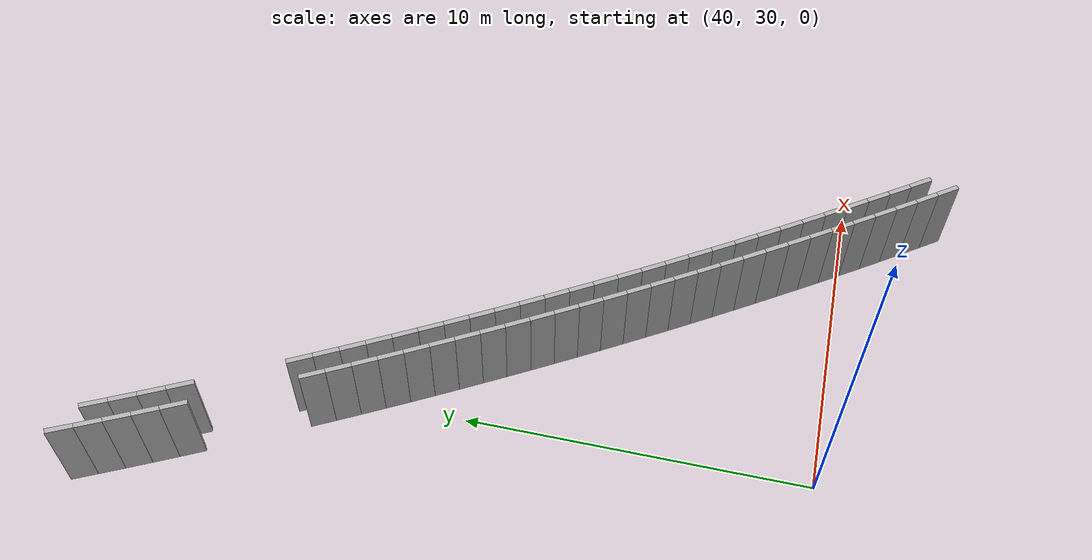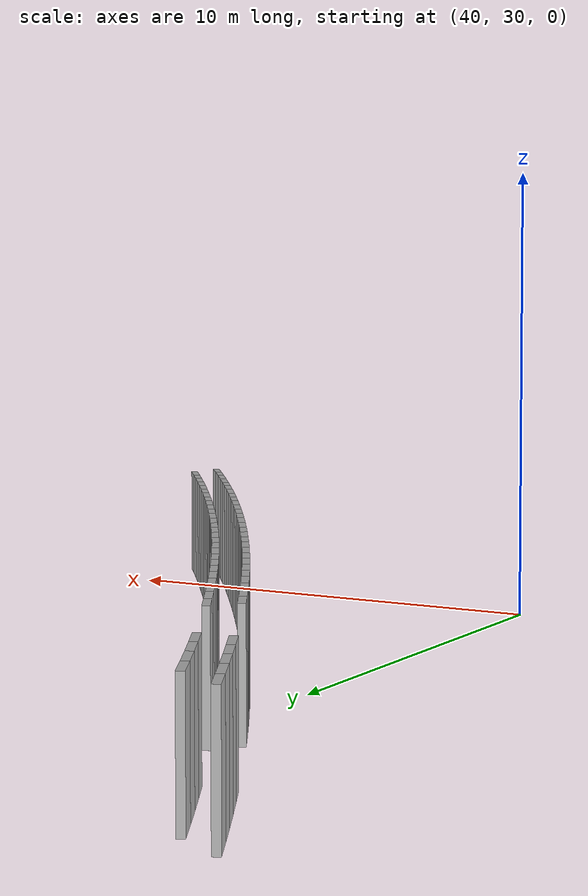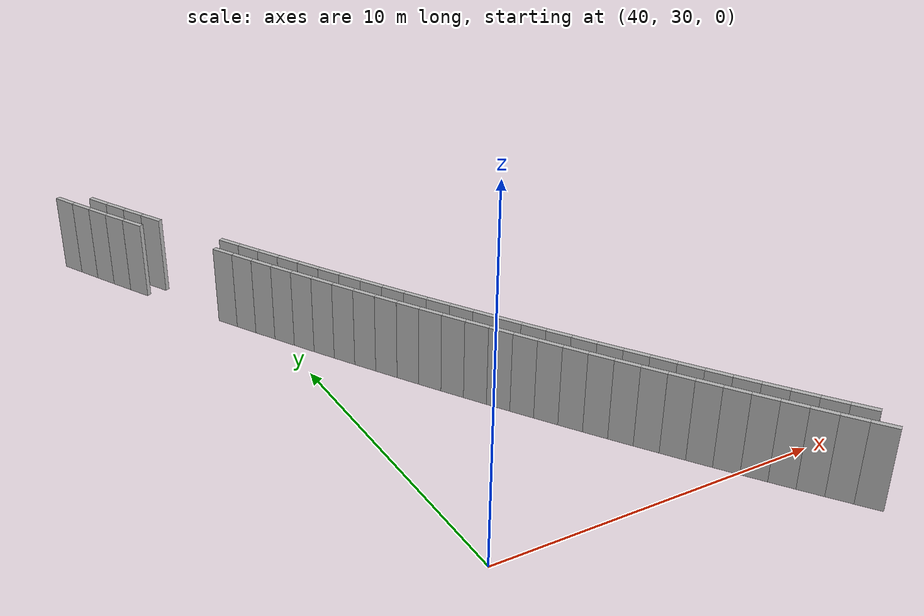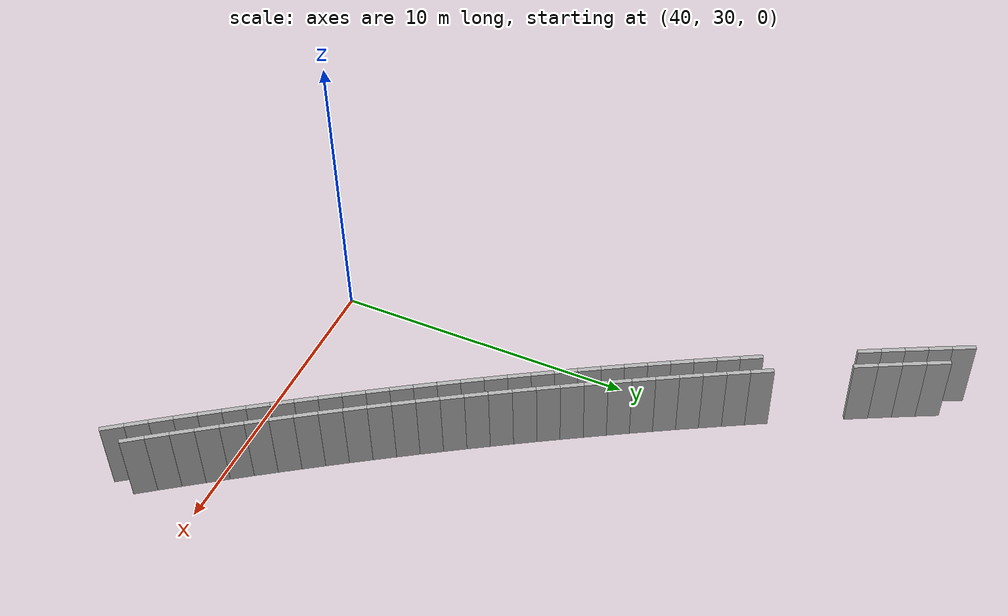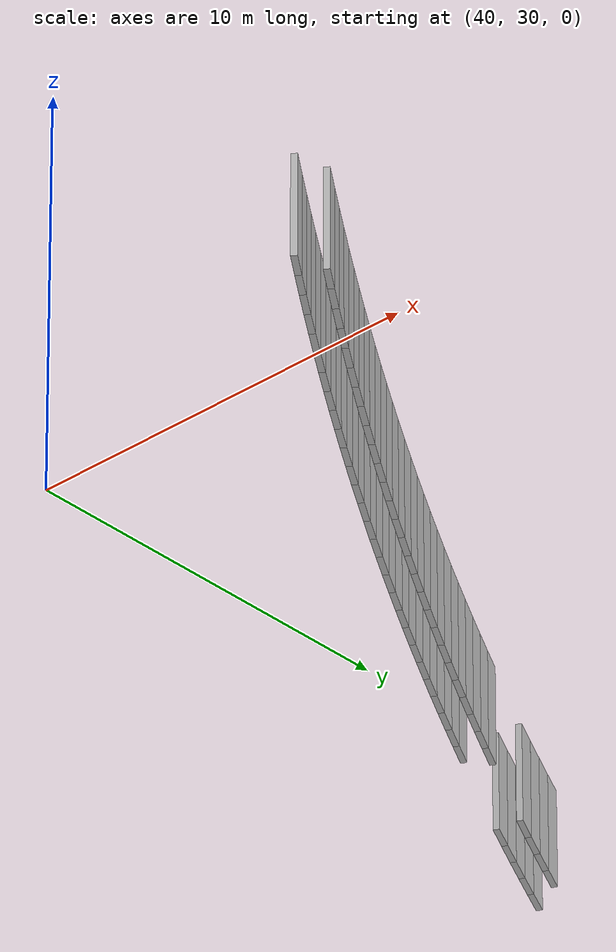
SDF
<?xml version="1.0" ?>
<sdf version="1.6">
  <model name="sps_0101">
    <pose frame="">0 0 0 0 -0 0</pose>
    <static>1</static>
    <self_collide>0</self_collide>
    <allow_auto_disable>0</allow_auto_disable>
    <link name="Wall8931">
      <kinematic>0</kinematic>
      <gravity>1</gravity>
      <self_collide>0</self_collide>
      <collision name="collision">
        <geometry>
          <box>
            <size>0.771651 0.15 2.5</size>
          </box>
        </geometry>
        <pose frame="">0 0 0 0 -0 0</pose>
      </collision>
      <visual name="visual">
        <geometry>
          <box>
            <size>0.771651 0.15 2.5</size>
          </box>
        </geometry>
        <pose frame="">0 0 0 0 -0 0</pose>
        <cast_shadows>1</cast_shadows>
        <transparency>0.0</transparency>
      </visual>
      <pose frame="">36.9091 49.4346 1.25 0 0 -1.10609</pose>
    </link>
    <link name="Wall8932">
      <kinematic>0</kinematic>
      <gravity>1</gravity>
      <self_collide>0</self_collide>
      <collision name="collision">
        <geometry>
          <box>
            <size>0.771365 0.15 2.5</size>
          </box>
        </geometry>
        <pose frame="">0 0 0 0 -0 0</pose>
      </collision>
      <visual name="visual">
        <geometry>
          <box>
            <size>0.771365 0.15 2.5</size>
          </box>
        </geometry>
        <pose frame="">0 0 0 0 -0 0</pose>
        <cast_shadows>1</cast_shadows>
        <transparency>0.0</transparency>
      </visual>
      <pose frame="">37.2566 48.7458 1.25 0 0 -1.10103</pose>
    </link>
    <link name="Wall8933">
      <kinematic>0</kinematic>
      <gravity>1</gravity>
      <self_collide>0</self_collide>
      <collision name="collision">
        <geometry>
          <box>
            <size>0.771452 0.15 2.5</size>
          </box>
        </geometry>
        <pose frame="">0 0 0 0 -0 0</pose>
      </collision>
      <visual name="visual">
        <geometry>
          <box>
            <size>0.771452 0.15 2.5</size>
          </box>
        </geometry>
        <pose frame="">0 0 0 0 -0 0</pose>
        <cast_shadows>1</cast_shadows>
        <transparency>0.0</transparency>
      </visual>
      <pose frame="">37.6075 48.0588 1.25 0 0 -1.09611</pose>
    </link>
    <link name="Wall8934">
      <kinematic>0</kinematic>
      <gravity>1</gravity>
      <self_collide>0</self_collide>
      <collision name="collision">
        <geometry>
          <box>
            <size>0.771666 0.15 2.5</size>
          </box>
        </geometry>
        <pose frame="">0 0 0 0 -0 0</pose>
      </collision>
      <visual name="visual">
        <geometry>
          <box>
            <size>0.771666 0.15 2.5</size>
          </box>
        </geometry>
        <pose frame="">0 0 0 0 -0 0</pose>
        <cast_shadows>1</cast_shadows>
        <transparency>0.0</transparency>
      </visual>
      <pose frame="">37.9618 47.3734 1.25 0 0 -1.09127</pose>
    </link>
    <link name="Wall18893">
      <kinematic>0</kinematic>
      <gravity>1</gravity>
      <self_collide>0</self_collide>
      <collision name="collision">
        <geometry>
          <box>
            <size>0.74526 0.15 2.5</size>
          </box>
        </geometry>
        <pose frame="">0 0 0 0 -0 0</pose>
      </collision>
      <visual name="visual">
        <geometry>
          <box>
            <size>0.74526 0.15 2.5</size>
          </box>
        </geometry>
        <pose frame="">0 0 0 0 -0 0</pose>
        <cast_shadows>1</cast_shadows>
        <transparency>0.0</transparency>
      </visual>
      <pose frame="">39.4961 44.4989 1.25 0 0 -1.0707</pose>
    </link>
    <link name="Wall18894">
      <kinematic>0</kinematic>
      <gravity>1</gravity>
      <self_collide>0</self_collide>
      <collision name="collision">
        <geometry>
          <box>
            <size>0.745296 0.15 2.5</size>
          </box>
        </geometry>
        <pose frame="">0 0 0 0 -0 0</pose>
      </collision>
      <visual name="visual">
        <geometry>
          <box>
            <size>0.745296 0.15 2.5</size>
          </box>
        </geometry>
        <pose frame="">0 0 0 0 -0 0</pose>
        <cast_shadows>1</cast_shadows>
        <transparency>0.0</transparency>
      </visual>
      <pose frame="">39.8552 43.8458 1.25 0 0 -1.06568</pose>
    </link>
    <link name="Wall18895">
      <kinematic>0</kinematic>
      <gravity>1</gravity>
      <self_collide>0</self_collide>
      <collision name="collision">
        <geometry>
          <box>
            <size>0.745528 0.15 2.5</size>
          </box>
        </geometry>
        <pose frame="">0 0 0 0 -0 0</pose>
      </collision>
      <visual name="visual">
        <geometry>
          <box>
            <size>0.745528 0.15 2.5</size>
          </box>
        </geometry>
        <pose frame="">0 0 0 0 -0 0</pose>
        <cast_shadows>1</cast_shadows>
        <transparency>0.0</transparency>
      </visual>
      <pose frame="">40.2174 43.1943 1.25 0 0 -1.06107</pose>
    </link>
    <link name="Wall18896">
      <kinematic>0</kinematic>
      <gravity>1</gravity>
      <self_collide>0</self_collide>
      <collision name="collision">
        <geometry>
          <box>
            <size>0.745201 0.15 2.5</size>
          </box>
        </geometry>
        <pose frame="">0 0 0 0 -0 0</pose>
      </collision>
      <visual name="visual">
        <geometry>
          <box>
            <size>0.745201 0.15 2.5</size>
          </box>
        </geometry>
        <pose frame="">0 0 0 0 -0 0</pose>
        <cast_shadows>1</cast_shadows>
        <transparency>0.0</transparency>
      </visual>
      <pose frame="">40.5825 42.5445 1.25 0 0 -1.05651</pose>
    </link>
    <link name="Wall18897">
      <kinematic>0</kinematic>
      <gravity>1</gravity>
      <self_collide>0</self_collide>
      <collision name="collision">
        <geometry>
          <box>
            <size>0.74542 0.15 2.5</size>
          </box>
        </geometry>
        <pose frame="">0 0 0 0 -0 0</pose>
      </collision>
      <visual name="visual">
        <geometry>
          <box>
            <size>0.74542 0.15 2.5</size>
          </box>
        </geometry>
        <pose frame="">0 0 0 0 -0 0</pose>
        <cast_shadows>1</cast_shadows>
        <transparency>0.0</transparency>
      </visual>
      <pose frame="">40.9507 41.8965 1.25 0 0 -1.05168</pose>
    </link>
    <link name="Wall18898">
      <kinematic>0</kinematic>
      <gravity>1</gravity>
      <self_collide>0</self_collide>
      <collision name="collision">
        <geometry>
          <box>
            <size>0.745413 0.15 2.5</size>
          </box>
        </geometry>
        <pose frame="">0 0 0 0 -0 0</pose>
      </collision>
      <visual name="visual">
        <geometry>
          <box>
            <size>0.745413 0.15 2.5</size>
          </box>
        </geometry>
        <pose frame="">0 0 0 0 -0 0</pose>
        <cast_shadows>1</cast_shadows>
        <transparency>0.0</transparency>
      </visual>
      <pose frame="">41.3221 41.2502 1.25 0 0 -1.04677</pose>
    </link>
    <link name="Wall18899">
      <kinematic>0</kinematic>
      <gravity>1</gravity>
      <self_collide>0</self_collide>
      <collision name="collision">
        <geometry>
          <box>
            <size>0.745324 0.15 2.5</size>
          </box>
        </geometry>
        <pose frame="">0 0 0 0 -0 0</pose>
      </collision>
      <visual name="visual">
        <geometry>
          <box>
            <size>0.745324 0.15 2.5</size>
          </box>
        </geometry>
        <pose frame="">0 0 0 0 -0 0</pose>
        <cast_shadows>1</cast_shadows>
        <transparency>0.0</transparency>
      </visual>
      <pose frame="">41.6966 40.6057 1.25 0 0 -1.04224</pose>
    </link>
    <link name="Wall18900">
      <kinematic>0</kinematic>
      <gravity>1</gravity>
      <self_collide>0</self_collide>
      <collision name="collision">
        <geometry>
          <box>
            <size>0.745321 0.15 2.5</size>
          </box>
        </geometry>
        <pose frame="">0 0 0 0 -0 0</pose>
      </collision>
      <visual name="visual">
        <geometry>
          <box>
            <size>0.745321 0.15 2.5</size>
          </box>
        </geometry>
        <pose frame="">0 0 0 0 -0 0</pose>
        <cast_shadows>1</cast_shadows>
        <transparency>0.0</transparency>
      </visual>
      <pose frame="">42.074 39.963 1.25 0 0 -1.0374</pose>
    </link>
    <link name="Wall18901">
      <kinematic>0</kinematic>
      <gravity>1</gravity>
      <self_collide>0</self_collide>
      <collision name="collision">
        <geometry>
          <box>
            <size>0.745357 0.15 2.5</size>
          </box>
        </geometry>
        <pose frame="">0 0 0 0 -0 0</pose>
      </collision>
      <visual name="visual">
        <geometry>
          <box>
            <size>0.745357 0.15 2.5</size>
          </box>
        </geometry>
        <pose frame="">0 0 0 0 -0 0</pose>
        <cast_shadows>1</cast_shadows>
        <transparency>0.0</transparency>
      </visual>
      <pose frame="">42.4545 39.3221 1.25 0 0 -1.03267</pose>
    </link>
    <link name="Wall18902">
      <kinematic>0</kinematic>
      <gravity>1</gravity>
      <self_collide>0</self_collide>
      <collision name="collision">
        <geometry>
          <box>
            <size>0.745326 0.15 2.5</size>
          </box>
        </geometry>
        <pose frame="">0 0 0 0 -0 0</pose>
      </collision>
      <visual name="visual">
        <geometry>
          <box>
            <size>0.745326 0.15 2.5</size>
          </box>
        </geometry>
        <pose frame="">0 0 0 0 -0 0</pose>
        <cast_shadows>1</cast_shadows>
        <transparency>0.0</transparency>
      </visual>
      <pose frame="">42.838 38.683 1.25 0 0 -1.02796</pose>
    </link>
    <link name="Wall18903">
      <kinematic>0</kinematic>
      <gravity>1</gravity>
      <self_collide>0</self_collide>
      <collision name="collision">
        <geometry>
          <box>
            <size>0.745459 0.15 2.5</size>
          </box>
        </geometry>
        <pose frame="">0 0 0 0 -0 0</pose>
      </collision>
      <visual name="visual">
        <geometry>
          <box>
            <size>0.745459 0.15 2.5</size>
          </box>
        </geometry>
        <pose frame="">0 0 0 0 -0 0</pose>
        <cast_shadows>1</cast_shadows>
        <transparency>0.0</transparency>
      </visual>
      <pose frame="">43.2246 38.0457 1.25 0 0 -1.02309</pose>
    </link>
    <link name="Wall18904">
      <kinematic>0</kinematic>
      <gravity>1</gravity>
      <self_collide>0</self_collide>
      <collision name="collision">
        <geometry>
          <box>
            <size>0.745209 0.15 2.5</size>
          </box>
        </geometry>
        <pose frame="">0 0 0 0 -0 0</pose>
      </collision>
      <visual name="visual">
        <geometry>
          <box>
            <size>0.745209 0.15 2.5</size>
          </box>
        </geometry>
        <pose frame="">0 0 0 0 -0 0</pose>
        <cast_shadows>1</cast_shadows>
        <transparency>0.0</transparency>
      </visual>
      <pose frame="">43.6142 37.4103 1.25 0 0 -1.01847</pose>
    </link>
    <link name="Wall18905">
      <kinematic>0</kinematic>
      <gravity>1</gravity>
      <self_collide>0</self_collide>
      <collision name="collision">
        <geometry>
          <box>
            <size>0.745435 0.15 2.5</size>
          </box>
        </geometry>
        <pose frame="">0 0 0 0 -0 0</pose>
      </collision>
      <visual name="visual">
        <geometry>
          <box>
            <size>0.745435 0.15 2.5</size>
          </box>
        </geometry>
        <pose frame="">0 0 0 0 -0 0</pose>
        <cast_shadows>1</cast_shadows>
        <transparency>0.0</transparency>
      </visual>
      <pose frame="">44.0066 36.7767 1.25 0 0 -1.01393</pose>
    </link>
    <link name="Wall18906">
      <kinematic>0</kinematic>
      <gravity>1</gravity>
      <self_collide>0</self_collide>
      <collision name="collision">
        <geometry>
          <box>
            <size>0.745347 0.15 2.5</size>
          </box>
        </geometry>
        <pose frame="">0 0 0 0 -0 0</pose>
      </collision>
      <visual name="visual">
        <geometry>
          <box>
            <size>0.745347 0.15 2.5</size>
          </box>
        </geometry>
        <pose frame="">0 0 0 0 -0 0</pose>
        <cast_shadows>1</cast_shadows>
        <transparency>0.0</transparency>
      </visual>
      <pose frame="">44.4022 36.1449 1.25 0 0 -1.00903</pose>
    </link>
    <link name="Wall18907">
      <kinematic>0</kinematic>
      <gravity>1</gravity>
      <self_collide>0</self_collide>
      <collision name="collision">
        <geometry>
          <box>
            <size>0.745212 0.15 2.5</size>
          </box>
        </geometry>
        <pose frame="">0 0 0 0 -0 0</pose>
      </collision>
      <visual name="visual">
        <geometry>
          <box>
            <size>0.745212 0.15 2.5</size>
          </box>
        </geometry>
        <pose frame="">0 0 0 0 -0 0</pose>
        <cast_shadows>1</cast_shadows>
        <transparency>0.0</transparency>
      </visual>
      <pose frame="">44.8007 35.5151 1.25 0 0 -1.00426</pose>
    </link>
    <link name="Wall18908">
      <kinematic>0</kinematic>
      <gravity>1</gravity>
      <self_collide>0</self_collide>
      <collision name="collision">
        <geometry>
          <box>
            <size>0.745364 0.15 2.5</size>
          </box>
        </geometry>
        <pose frame="">0 0 0 0 -0 0</pose>
      </collision>
      <visual name="visual">
        <geometry>
          <box>
            <size>0.745364 0.15 2.5</size>
          </box>
        </geometry>
        <pose frame="">0 0 0 0 -0 0</pose>
        <cast_shadows>1</cast_shadows>
        <transparency>0.0</transparency>
      </visual>
      <pose frame="">45.2021 34.8872 1.25 0 0 -0.999533</pose>
    </link>
    <link name="Wall18909">
      <kinematic>0</kinematic>
      <gravity>1</gravity>
      <self_collide>0</self_collide>
      <collision name="collision">
        <geometry>
          <box>
            <size>0.745449 0.15 2.5</size>
          </box>
        </geometry>
        <pose frame="">0 0 0 0 -0 0</pose>
      </collision>
      <visual name="visual">
        <geometry>
          <box>
            <size>0.745449 0.15 2.5</size>
          </box>
        </geometry>
        <pose frame="">0 0 0 0 -0 0</pose>
        <cast_shadows>1</cast_shadows>
        <transparency>0.0</transparency>
      </visual>
      <pose frame="">45.6067 34.2611 1.25 0 0 -0.99483</pose>
    </link>
    <link name="Wall18910">
      <kinematic>0</kinematic>
      <gravity>1</gravity>
      <self_collide>0</self_collide>
      <collision name="collision">
        <geometry>
          <box>
            <size>0.745449 0.15 2.5</size>
          </box>
        </geometry>
        <pose frame="">0 0 0 0 -0 0</pose>
      </collision>
      <visual name="visual">
        <geometry>
          <box>
            <size>0.745449 0.15 2.5</size>
          </box>
        </geometry>
        <pose frame="">0 0 0 0 -0 0</pose>
        <cast_shadows>1</cast_shadows>
        <transparency>0.0</transparency>
      </visual>
      <pose frame="">46.0142 33.6369 1.25 0 0 -0.990038</pose>
    </link>
    <link name="Wall18911">
      <kinematic>0</kinematic>
      <gravity>1</gravity>
      <self_collide>0</self_collide>
      <collision name="collision">
        <geometry>
          <box>
            <size>0.745262 0.15 2.5</size>
          </box>
        </geometry>
        <pose frame="">0 0 0 0 -0 0</pose>
      </collision>
      <visual name="visual">
        <geometry>
          <box>
            <size>0.745262 0.15 2.5</size>
          </box>
        </geometry>
        <pose frame="">0 0 0 0 -0 0</pose>
        <cast_shadows>1</cast_shadows>
        <transparency>0.0</transparency>
      </visual>
      <pose frame="">46.4246 33.0147 1.25 0 0 -0.98536</pose>
    </link>
    <link name="Wall18912">
      <kinematic>0</kinematic>
      <gravity>1</gravity>
      <self_collide>0</self_collide>
      <collision name="collision">
        <geometry>
          <box>
            <size>0.745296 0.15 2.5</size>
          </box>
        </geometry>
        <pose frame="">0 0 0 0 -0 0</pose>
      </collision>
      <visual name="visual">
        <geometry>
          <box>
            <size>0.745296 0.15 2.5</size>
          </box>
        </geometry>
        <pose frame="">0 0 0 0 -0 0</pose>
        <cast_shadows>1</cast_shadows>
        <transparency>0.0</transparency>
      </visual>
      <pose frame="">46.8379 32.3945 1.25 0 0 -0.980568</pose>
    </link>
    <link name="Wall18913">
      <kinematic>0</kinematic>
      <gravity>1</gravity>
      <self_collide>0</self_collide>
      <collision name="collision">
        <geometry>
          <box>
            <size>0.745346 0.15 2.5</size>
          </box>
        </geometry>
        <pose frame="">0 0 0 0 -0 0</pose>
      </collision>
      <visual name="visual">
        <geometry>
          <box>
            <size>0.745346 0.15 2.5</size>
          </box>
        </geometry>
        <pose frame="">0 0 0 0 -0 0</pose>
        <cast_shadows>1</cast_shadows>
        <transparency>0.0</transparency>
      </visual>
      <pose frame="">47.2541 31.7763 1.25 0 0 -0.975776</pose>
    </link>
    <link name="Wall18914">
      <kinematic>0</kinematic>
      <gravity>1</gravity>
      <self_collide>0</self_collide>
      <collision name="collision">
        <geometry>
          <box>
            <size>0.74536 0.15 2.5</size>
          </box>
        </geometry>
        <pose frame="">0 0 0 0 -0 0</pose>
      </collision>
      <visual name="visual">
        <geometry>
          <box>
            <size>0.74536 0.15 2.5</size>
          </box>
        </geometry>
        <pose frame="">0 0 0 0 -0 0</pose>
        <cast_shadows>1</cast_shadows>
        <transparency>0.0</transparency>
      </visual>
      <pose frame="">47.6733 31.16 1.25 0 0 -0.971233</pose>
    </link>
    <link name="Wall18915">
      <kinematic>0</kinematic>
      <gravity>1</gravity>
      <self_collide>0</self_collide>
      <collision name="collision">
        <geometry>
          <box>
            <size>0.745479 0.15 2.5</size>
          </box>
        </geometry>
        <pose frame="">0 0 0 0 -0 0</pose>
      </collision>
      <visual name="visual">
        <geometry>
          <box>
            <size>0.745479 0.15 2.5</size>
          </box>
        </geometry>
        <pose frame="">0 0 0 0 -0 0</pose>
        <cast_shadows>1</cast_shadows>
        <transparency>0.0</transparency>
      </visual>
      <pose frame="">48.0955 30.5456 1.25 0 0 -0.966375</pose>
    </link>
    <link name="Wall18916">
      <kinematic>0</kinematic>
      <gravity>1</gravity>
      <self_collide>0</self_collide>
      <collision name="collision">
        <geometry>
          <box>
            <size>0.74524 0.15 2.5</size>
          </box>
        </geometry>
        <pose frame="">0 0 0 0 -0 0</pose>
      </collision>
      <visual name="visual">
        <geometry>
          <box>
            <size>0.74524 0.15 2.5</size>
          </box>
        </geometry>
        <pose frame="">0 0 0 0 -0 0</pose>
        <cast_shadows>1</cast_shadows>
        <transparency>0.0</transparency>
      </visual>
      <pose frame="">48.5205 29.9333 1.25 0 0 -0.961667</pose>
    </link>
    <link name="Wall18917">
      <kinematic>0</kinematic>
      <gravity>1</gravity>
      <self_collide>0</self_collide>
      <collision name="collision">
        <geometry>
          <box>
            <size>0.745508 0.15 2.5</size>
          </box>
        </geometry>
        <pose frame="">0 0 0 0 -0 0</pose>
      </collision>
      <visual name="visual">
        <geometry>
          <box>
            <size>0.745508 0.15 2.5</size>
          </box>
        </geometry>
        <pose frame="">0 0 0 0 -0 0</pose>
        <cast_shadows>1</cast_shadows>
        <transparency>0.0</transparency>
      </visual>
      <pose frame="">48.9484 29.323 1.25 0 0 -0.957019</pose>
    </link>
    <link name="Wall18918">
      <kinematic>0</kinematic>
      <gravity>1</gravity>
      <self_collide>0</self_collide>
      <collision name="collision">
        <geometry>
          <box>
            <size>0.745287 0.15 2.5</size>
          </box>
        </geometry>
        <pose frame="">0 0 0 0 -0 0</pose>
      </collision>
      <visual name="visual">
        <geometry>
          <box>
            <size>0.745287 0.15 2.5</size>
          </box>
        </geometry>
        <pose frame="">0 0 0 0 -0 0</pose>
        <cast_shadows>1</cast_shadows>
        <transparency>0.0</transparency>
      </visual>
      <pose frame="">49.3791 28.7147 1.25 0 0 -0.952194</pose>
    </link>
    <link name="Wall18919">
      <kinematic>0</kinematic>
      <gravity>1</gravity>
      <self_collide>0</self_collide>
      <collision name="collision">
        <geometry>
          <box>
            <size>0.745282 0.15 2.5</size>
          </box>
        </geometry>
        <pose frame="">0 0 0 0 -0 0</pose>
      </collision>
      <visual name="visual">
        <geometry>
          <box>
            <size>0.745282 0.15 2.5</size>
          </box>
        </geometry>
        <pose frame="">0 0 0 0 -0 0</pose>
        <cast_shadows>1</cast_shadows>
        <transparency>0.0</transparency>
      </visual>
      <pose frame="">49.8127 28.1085 1.25 0 0 -0.947558</pose>
    </link>
    <link name="Wall20884">
      <kinematic>0</kinematic>
      <gravity>1</gravity>
      <self_collide>0</self_collide>
      <collision name="collision">
        <geometry>
          <box>
            <size>0.753398 0.15 2.5</size>
          </box>
        </geometry>
        <pose frame="">0 0 0 0 -0 0</pose>
      </collision>
      <visual name="visual">
        <geometry>
          <box>
            <size>0.753398 0.15 2.5</size>
          </box>
        </geometry>
        <pose frame="">0 0 0 0 -0 0</pose>
        <cast_shadows>1</cast_shadows>
        <transparency>0.0</transparency>
      </visual>
      <pose frame="">35.96 49.9944 1.25 0 0 -1.11179</pose>
    </link>
    <link name="Wall20885">
      <kinematic>0</kinematic>
      <gravity>1</gravity>
      <self_collide>0</self_collide>
      <collision name="collision">
        <geometry>
          <box>
            <size>0.753554 0.15 2.5</size>
          </box>
        </geometry>
        <pose frame="">0 0 0 0 -0 0</pose>
      </collision>
      <visual name="visual">
        <geometry>
          <box>
            <size>0.753554 0.15 2.5</size>
          </box>
        </geometry>
        <pose frame="">0 0 0 0 -0 0</pose>
        <cast_shadows>1</cast_shadows>
        <transparency>0.0</transparency>
      </visual>
      <pose frame="">36.2953 49.3197 1.25 0 0 -1.10718</pose>
    </link>
    <link name="Wall20886">
      <kinematic>0</kinematic>
      <gravity>1</gravity>
      <self_collide>0</self_collide>
      <collision name="collision">
        <geometry>
          <box>
            <size>0.753482 0.15 2.5</size>
          </box>
        </geometry>
        <pose frame="">0 0 0 0 -0 0</pose>
      </collision>
      <visual name="visual">
        <geometry>
          <box>
            <size>0.753482 0.15 2.5</size>
          </box>
        </geometry>
        <pose frame="">0 0 0 0 -0 0</pose>
        <cast_shadows>1</cast_shadows>
        <transparency>0.0</transparency>
      </visual>
      <pose frame="">36.6341 48.6466 1.25 0 0 -1.10197</pose>
    </link>
    <link name="Wall20887">
      <kinematic>0</kinematic>
      <gravity>1</gravity>
      <self_collide>0</self_collide>
      <collision name="collision">
        <geometry>
          <box>
            <size>0.753615 0.15 2.5</size>
          </box>
        </geometry>
        <pose frame="">0 0 0 0 -0 0</pose>
      </collision>
      <visual name="visual">
        <geometry>
          <box>
            <size>0.753615 0.15 2.5</size>
          </box>
        </geometry>
        <pose frame="">0 0 0 0 -0 0</pose>
        <cast_shadows>1</cast_shadows>
        <transparency>0.0</transparency>
      </visual>
      <pose frame="">36.976 47.9751 1.25 0 0 -1.0977</pose>
    </link>
    <link name="Wall20888">
      <kinematic>0</kinematic>
      <gravity>1</gravity>
      <self_collide>0</self_collide>
      <collision name="collision">
        <geometry>
          <box>
            <size>0.753414 0.15 2.5</size>
          </box>
        </geometry>
        <pose frame="">0 0 0 0 -0 0</pose>
      </collision>
      <visual name="visual">
        <geometry>
          <box>
            <size>0.753414 0.15 2.5</size>
          </box>
        </geometry>
        <pose frame="">0 0 0 0 -0 0</pose>
        <cast_shadows>1</cast_shadows>
        <transparency>0.0</transparency>
      </visual>
      <pose frame="">37.321 47.3052 1.25 0 0 -1.09273</pose>
    </link>
    <link name="Wall20892">
      <kinematic>0</kinematic>
      <gravity>1</gravity>
      <self_collide>0</self_collide>
      <collision name="collision">
        <geometry>
          <box>
            <size>0.733016 0.15 2.5</size>
          </box>
        </geometry>
        <pose frame="">0 0 0 0 -0 0</pose>
      </collision>
      <visual name="visual">
        <geometry>
          <box>
            <size>0.733016 0.15 2.5</size>
          </box>
        </geometry>
        <pose frame="">0 0 0 0 -0 0</pose>
        <cast_shadows>1</cast_shadows>
        <transparency>0.0</transparency>
      </visual>
      <pose frame="">39.0837 44.002 1.25 0 0 -1.06897</pose>
    </link>
    <link name="Wall20893">
      <kinematic>0</kinematic>
      <gravity>1</gravity>
      <self_collide>0</self_collide>
      <collision name="collision">
        <geometry>
          <box>
            <size>0.732929 0.15 2.5</size>
          </box>
        </geometry>
        <pose frame="">0 0 0 0 -0 0</pose>
      </collision>
      <visual name="visual">
        <geometry>
          <box>
            <size>0.732929 0.15 2.5</size>
          </box>
        </geometry>
        <pose frame="">0 0 0 0 -0 0</pose>
        <cast_shadows>1</cast_shadows>
        <transparency>0.0</transparency>
      </visual>
      <pose frame="">39.4377 43.3602 1.25 0 0 -1.06453</pose>
    </link>
    <link name="Wall20894">
      <kinematic>0</kinematic>
      <gravity>1</gravity>
      <self_collide>0</self_collide>
      <collision name="collision">
        <geometry>
          <box>
            <size>0.732839 0.15 2.5</size>
          </box>
        </geometry>
        <pose frame="">0 0 0 0 -0 0</pose>
      </collision>
      <visual name="visual">
        <geometry>
          <box>
            <size>0.732839 0.15 2.5</size>
          </box>
        </geometry>
        <pose frame="">0 0 0 0 -0 0</pose>
        <cast_shadows>1</cast_shadows>
        <transparency>0.0</transparency>
      </visual>
      <pose frame="">39.7946 42.7201 1.25 0 0 -1.05979</pose>
    </link>
    <link name="Wall20895">
      <kinematic>0</kinematic>
      <gravity>1</gravity>
      <self_collide>0</self_collide>
      <collision name="collision">
        <geometry>
          <box>
            <size>0.733032 0.15 2.5</size>
          </box>
        </geometry>
        <pose frame="">0 0 0 0 -0 0</pose>
      </collision>
      <visual name="visual">
        <geometry>
          <box>
            <size>0.733032 0.15 2.5</size>
          </box>
        </geometry>
        <pose frame="">0 0 0 0 -0 0</pose>
        <cast_shadows>1</cast_shadows>
        <transparency>0.0</transparency>
      </visual>
      <pose frame="">40.1545 42.0816 1.25 0 0 -1.05525</pose>
    </link>
    <link name="Wall20896">
      <kinematic>0</kinematic>
      <gravity>1</gravity>
      <self_collide>0</self_collide>
      <collision name="collision">
        <geometry>
          <box>
            <size>0.733005 0.15 2.5</size>
          </box>
        </geometry>
        <pose frame="">0 0 0 0 -0 0</pose>
      </collision>
      <visual name="visual">
        <geometry>
          <box>
            <size>0.733005 0.15 2.5</size>
          </box>
        </geometry>
        <pose frame="">0 0 0 0 -0 0</pose>
        <cast_shadows>1</cast_shadows>
        <transparency>0.0</transparency>
      </visual>
      <pose frame="">40.5174 41.4447 1.25 0 0 -1.05044</pose>
    </link>
    <link name="Wall20897">
      <kinematic>0</kinematic>
      <gravity>1</gravity>
      <self_collide>0</self_collide>
      <collision name="collision">
        <geometry>
          <box>
            <size>0.732933 0.15 2.5</size>
          </box>
        </geometry>
        <pose frame="">0 0 0 0 -0 0</pose>
      </collision>
      <visual name="visual">
        <geometry>
          <box>
            <size>0.732933 0.15 2.5</size>
          </box>
        </geometry>
        <pose frame="">0 0 0 0 -0 0</pose>
        <cast_shadows>1</cast_shadows>
        <transparency>0.0</transparency>
      </visual>
      <pose frame="">40.8834 40.8096 1.25 0 0 -1.04577</pose>
    </link>
    <link name="Wall20898">
      <kinematic>0</kinematic>
      <gravity>1</gravity>
      <self_collide>0</self_collide>
      <collision name="collision">
        <geometry>
          <box>
            <size>0.733005 0.15 2.5</size>
          </box>
        </geometry>
        <pose frame="">0 0 0 0 -0 0</pose>
      </collision>
      <visual name="visual">
        <geometry>
          <box>
            <size>0.733005 0.15 2.5</size>
          </box>
        </geometry>
        <pose frame="">0 0 0 0 -0 0</pose>
        <cast_shadows>1</cast_shadows>
        <transparency>0.0</transparency>
      </visual>
      <pose frame="">41.2522 40.1762 1.25 0 0 -1.0413</pose>
    </link>
    <link name="Wall20899">
      <kinematic>0</kinematic>
      <gravity>1</gravity>
      <self_collide>0</self_collide>
      <collision name="collision">
        <geometry>
          <box>
            <size>0.732913 0.15 2.5</size>
          </box>
        </geometry>
        <pose frame="">0 0 0 0 -0 0</pose>
      </collision>
      <visual name="visual">
        <geometry>
          <box>
            <size>0.732913 0.15 2.5</size>
          </box>
        </geometry>
        <pose frame="">0 0 0 0 -0 0</pose>
        <cast_shadows>1</cast_shadows>
        <transparency>0.0</transparency>
      </visual>
      <pose frame="">41.6239 39.5445 1.25 0 0 -1.03659</pose>
    </link>
    <link name="Wall20900">
      <kinematic>0</kinematic>
      <gravity>1</gravity>
      <self_collide>0</self_collide>
      <collision name="collision">
        <geometry>
          <box>
            <size>0.733015 0.15 2.5</size>
          </box>
        </geometry>
        <pose frame="">0 0 0 0 -0 0</pose>
      </collision>
      <visual name="visual">
        <geometry>
          <box>
            <size>0.733015 0.15 2.5</size>
          </box>
        </geometry>
        <pose frame="">0 0 0 0 -0 0</pose>
        <cast_shadows>1</cast_shadows>
        <transparency>0.0</transparency>
      </visual>
      <pose frame="">41.9985 38.9145 1.25 0 0 -1.03212</pose>
    </link>
    <link name="Wall20901">
      <kinematic>0</kinematic>
      <gravity>1</gravity>
      <self_collide>0</self_collide>
      <collision name="collision">
        <geometry>
          <box>
            <size>0.732893 0.15 2.5</size>
          </box>
        </geometry>
        <pose frame="">0 0 0 0 -0 0</pose>
      </collision>
      <visual name="visual">
        <geometry>
          <box>
            <size>0.732893 0.15 2.5</size>
          </box>
        </geometry>
        <pose frame="">0 0 0 0 -0 0</pose>
        <cast_shadows>1</cast_shadows>
        <transparency>0.0</transparency>
      </visual>
      <pose frame="">42.3761 38.2863 1.25 0 0 -1.02706</pose>
    </link>
    <link name="Wall20902">
      <kinematic>0</kinematic>
      <gravity>1</gravity>
      <self_collide>0</self_collide>
      <collision name="collision">
        <geometry>
          <box>
            <size>0.732878 0.15 2.5</size>
          </box>
        </geometry>
        <pose frame="">0 0 0 0 -0 0</pose>
      </collision>
      <visual name="visual">
        <geometry>
          <box>
            <size>0.732878 0.15 2.5</size>
          </box>
        </geometry>
        <pose frame="">0 0 0 0 -0 0</pose>
        <cast_shadows>1</cast_shadows>
        <transparency>0.0</transparency>
      </visual>
      <pose frame="">42.7566 37.6599 1.25 0 0 -1.02276</pose>
    </link>
    <link name="Wall20903">
      <kinematic>0</kinematic>
      <gravity>1</gravity>
      <self_collide>0</self_collide>
      <collision name="collision">
        <geometry>
          <box>
            <size>0.732954 0.15 2.5</size>
          </box>
        </geometry>
        <pose frame="">0 0 0 0 -0 0</pose>
      </collision>
      <visual name="visual">
        <geometry>
          <box>
            <size>0.732954 0.15 2.5</size>
          </box>
        </geometry>
        <pose frame="">0 0 0 0 -0 0</pose>
        <cast_shadows>1</cast_shadows>
        <transparency>0.0</transparency>
      </visual>
      <pose frame="">43.1399 37.0352 1.25 0 0 -1.01814</pose>
    </link>
    <link name="Wall20904">
      <kinematic>0</kinematic>
      <gravity>1</gravity>
      <self_collide>0</self_collide>
      <collision name="collision">
        <geometry>
          <box>
            <size>0.733006 0.15 2.5</size>
          </box>
        </geometry>
        <pose frame="">0 0 0 0 -0 0</pose>
      </collision>
      <visual name="visual">
        <geometry>
          <box>
            <size>0.733006 0.15 2.5</size>
          </box>
        </geometry>
        <pose frame="">0 0 0 0 -0 0</pose>
        <cast_shadows>1</cast_shadows>
        <transparency>0.0</transparency>
      </visual>
      <pose frame="">43.5261 36.4123 1.25 0 0 -1.01328</pose>
    </link>
    <link name="Wall20905">
      <kinematic>0</kinematic>
      <gravity>1</gravity>
      <self_collide>0</self_collide>
      <collision name="collision">
        <geometry>
          <box>
            <size>0.732815 0.15 2.5</size>
          </box>
        </geometry>
        <pose frame="">0 0 0 0 -0 0</pose>
      </collision>
      <visual name="visual">
        <geometry>
          <box>
            <size>0.732815 0.15 2.5</size>
          </box>
        </geometry>
        <pose frame="">0 0 0 0 -0 0</pose>
        <cast_shadows>1</cast_shadows>
        <transparency>0.0</transparency>
      </visual>
      <pose frame="">43.9152 35.7912 1.25 0 0 -1.00899</pose>
    </link>
    <link name="Wall20906">
      <kinematic>0</kinematic>
      <gravity>1</gravity>
      <self_collide>0</self_collide>
      <collision name="collision">
        <geometry>
          <box>
            <size>0.732952 0.15 2.5</size>
          </box>
        </geometry>
        <pose frame="">0 0 0 0 -0 0</pose>
      </collision>
      <visual name="visual">
        <geometry>
          <box>
            <size>0.732952 0.15 2.5</size>
          </box>
        </geometry>
        <pose frame="">0 0 0 0 -0 0</pose>
        <cast_shadows>1</cast_shadows>
        <transparency>0.0</transparency>
      </visual>
      <pose frame="">44.3072 35.1719 1.25 0 0 -1.00418</pose>
    </link>
    <link name="Wall20907">
      <kinematic>0</kinematic>
      <gravity>1</gravity>
      <self_collide>0</self_collide>
      <collision name="collision">
        <geometry>
          <box>
            <size>0.732987 0.15 2.5</size>
          </box>
        </geometry>
        <pose frame="">0 0 0 0 -0 0</pose>
      </collision>
      <visual name="visual">
        <geometry>
          <box>
            <size>0.732987 0.15 2.5</size>
          </box>
        </geometry>
        <pose frame="">0 0 0 0 -0 0</pose>
        <cast_shadows>1</cast_shadows>
        <transparency>0.0</transparency>
      </visual>
      <pose frame="">44.702 34.5544 1.25 0 0 -0.999469</pose>
    </link>
    <link name="Wall20908">
      <kinematic>0</kinematic>
      <gravity>1</gravity>
      <self_collide>0</self_collide>
      <collision name="collision">
        <geometry>
          <box>
            <size>0.733004 0.15 2.5</size>
          </box>
        </geometry>
        <pose frame="">0 0 0 0 -0 0</pose>
      </collision>
      <visual name="visual">
        <geometry>
          <box>
            <size>0.733004 0.15 2.5</size>
          </box>
        </geometry>
        <pose frame="">0 0 0 0 -0 0</pose>
        <cast_shadows>1</cast_shadows>
        <transparency>0.0</transparency>
      </visual>
      <pose frame="">45.0999 33.9388 1.25 0 0 -0.994526</pose>
    </link>
    <link name="Wall20909">
      <kinematic>0</kinematic>
      <gravity>1</gravity>
      <self_collide>0</self_collide>
      <collision name="collision">
        <geometry>
          <box>
            <size>0.732905 0.15 2.5</size>
          </box>
        </geometry>
        <pose frame="">0 0 0 0 -0 0</pose>
      </collision>
      <visual name="visual">
        <geometry>
          <box>
            <size>0.732905 0.15 2.5</size>
          </box>
        </geometry>
        <pose frame="">0 0 0 0 -0 0</pose>
        <cast_shadows>1</cast_shadows>
        <transparency>0.0</transparency>
      </visual>
      <pose frame="">45.5007 33.3251 1.25 0 0 -0.990162</pose>
    </link>
    <link name="Wall20910">
      <kinematic>0</kinematic>
      <gravity>1</gravity>
      <self_collide>0</self_collide>
      <collision name="collision">
        <geometry>
          <box>
            <size>0.732939 0.15 2.5</size>
          </box>
        </geometry>
        <pose frame="">0 0 0 0 -0 0</pose>
      </collision>
      <visual name="visual">
        <geometry>
          <box>
            <size>0.732939 0.15 2.5</size>
          </box>
        </geometry>
        <pose frame="">0 0 0 0 -0 0</pose>
        <cast_shadows>1</cast_shadows>
        <transparency>0.0</transparency>
      </visual>
      <pose frame="">45.9041 32.7132 1.25 0 0 -0.985704</pose>
    </link>
    <link name="Wall20911">
      <kinematic>0</kinematic>
      <gravity>1</gravity>
      <self_collide>0</self_collide>
      <collision name="collision">
        <geometry>
          <box>
            <size>0.732971 0.15 2.5</size>
          </box>
        </geometry>
        <pose frame="">0 0 0 0 -0 0</pose>
      </collision>
      <visual name="visual">
        <geometry>
          <box>
            <size>0.732971 0.15 2.5</size>
          </box>
        </geometry>
        <pose frame="">0 0 0 0 -0 0</pose>
        <cast_shadows>1</cast_shadows>
        <transparency>0.0</transparency>
      </visual>
      <pose frame="">46.3103 32.1031 1.25 0 0 -0.981131</pose>
    </link>
    <link name="Wall20912">
      <kinematic>0</kinematic>
      <gravity>1</gravity>
      <self_collide>0</self_collide>
      <collision name="collision">
        <geometry>
          <box>
            <size>0.732969 0.15 2.5</size>
          </box>
        </geometry>
        <pose frame="">0 0 0 0 -0 0</pose>
      </collision>
      <visual name="visual">
        <geometry>
          <box>
            <size>0.732969 0.15 2.5</size>
          </box>
        </geometry>
        <pose frame="">0 0 0 0 -0 0</pose>
        <cast_shadows>1</cast_shadows>
        <transparency>0.0</transparency>
      </visual>
      <pose frame="">46.7194 31.4949 1.25 0 0 -0.976212</pose>
    </link>
    <link name="Wall20913">
      <kinematic>0</kinematic>
      <gravity>1</gravity>
      <self_collide>0</self_collide>
      <collision name="collision">
        <geometry>
          <box>
            <size>0.732932 0.15 2.5</size>
          </box>
        </geometry>
        <pose frame="">0 0 0 0 -0 0</pose>
      </collision>
      <visual name="visual">
        <geometry>
          <box>
            <size>0.732932 0.15 2.5</size>
          </box>
        </geometry>
        <pose frame="">0 0 0 0 -0 0</pose>
        <cast_shadows>1</cast_shadows>
        <transparency>0.0</transparency>
      </visual>
      <pose frame="">47.1313 30.8887 1.25 0 0 -0.971546</pose>
    </link>
    <link name="Wall20914">
      <kinematic>0</kinematic>
      <gravity>1</gravity>
      <self_collide>0</self_collide>
      <collision name="collision">
        <geometry>
          <box>
            <size>0.732907 0.15 2.5</size>
          </box>
        </geometry>
        <pose frame="">0 0 0 0 -0 0</pose>
      </collision>
      <visual name="visual">
        <geometry>
          <box>
            <size>0.732907 0.15 2.5</size>
          </box>
        </geometry>
        <pose frame="">0 0 0 0 -0 0</pose>
        <cast_shadows>1</cast_shadows>
        <transparency>0.0</transparency>
      </visual>
      <pose frame="">47.546 30.2844 1.25 0 0 -0.967179</pose>
    </link>
    <link name="Wall20915">
      <kinematic>0</kinematic>
      <gravity>1</gravity>
      <self_collide>0</self_collide>
      <collision name="collision">
        <geometry>
          <box>
            <size>0.732955 0.15 2.5</size>
          </box>
        </geometry>
        <pose frame="">0 0 0 0 -0 0</pose>
      </collision>
      <visual name="visual">
        <geometry>
          <box>
            <size>0.732955 0.15 2.5</size>
          </box>
        </geometry>
        <pose frame="">0 0 0 0 -0 0</pose>
        <cast_shadows>1</cast_shadows>
        <transparency>0.0</transparency>
      </visual>
      <pose frame="">47.9636 29.682 1.25 0 0 -0.96226</pose>
    </link>
    <link name="Wall20916">
      <kinematic>0</kinematic>
      <gravity>1</gravity>
      <self_collide>0</self_collide>
      <collision name="collision">
        <geometry>
          <box>
            <size>0.732825 0.15 2.5</size>
          </box>
        </geometry>
        <pose frame="">0 0 0 0 -0 0</pose>
      </collision>
      <visual name="visual">
        <geometry>
          <box>
            <size>0.732825 0.15 2.5</size>
          </box>
        </geometry>
        <pose frame="">0 0 0 0 -0 0</pose>
        <cast_shadows>1</cast_shadows>
        <transparency>0.0</transparency>
      </visual>
      <pose frame="">48.3838 29.0816 1.25 0 0 -0.957866</pose>
    </link>
    <link name="Wall20917">
      <kinematic>0</kinematic>
      <gravity>1</gravity>
      <self_collide>0</self_collide>
      <collision name="collision">
        <geometry>
          <box>
            <size>0.733092 0.15 2.5</size>
          </box>
        </geometry>
        <pose frame="">0 0 0 0 -0 0</pose>
      </collision>
      <visual name="visual">
        <geometry>
          <box>
            <size>0.733092 0.15 2.5</size>
          </box>
        </geometry>
        <pose frame="">0 0 0 0 -0 0</pose>
        <cast_shadows>1</cast_shadows>
        <transparency>0.0</transparency>
      </visual>
      <pose frame="">48.8069 28.4831 1.25 0 0 -0.953025</pose>
    </link>
    <link name="Wall20918">
      <kinematic>0</kinematic>
      <gravity>1</gravity>
      <self_collide>0</self_collide>
      <collision name="collision">
        <geometry>
          <box>
            <size>0.732942 0.15 2.5</size>
          </box>
        </geometry>
        <pose frame="">0 0 0 0 -0 0</pose>
      </collision>
      <visual name="visual">
        <geometry>
          <box>
            <size>0.732942 0.15 2.5</size>
          </box>
        </geometry>
        <pose frame="">0 0 0 0 -0 0</pose>
        <cast_shadows>1</cast_shadows>
        <transparency>0.0</transparency>
      </visual>
      <pose frame="">49.2328 27.8865 1.25 0 0 -0.948582</pose>
    </link>
    <link name="Wall20919">
      <kinematic>0</kinematic>
      <gravity>1</gravity>
      <self_collide>0</self_collide>
      <collision name="collision">
        <geometry>
          <box>
            <size>0.732999 0.15 2.5</size>
          </box>
        </geometry>
        <pose frame="">0 0 0 0 -0 0</pose>
      </collision>
      <visual name="visual">
        <geometry>
          <box>
            <size>0.732999 0.15 2.5</size>
          </box>
        </geometry>
        <pose frame="">0 0 0 0 -0 0</pose>
        <cast_shadows>1</cast_shadows>
        <transparency>0.0</transparency>
      </visual>
      <pose frame="">49.6614 27.2919 1.25 0 0 -0.943916</pose>
    </link>
  </model>
</sdf>
